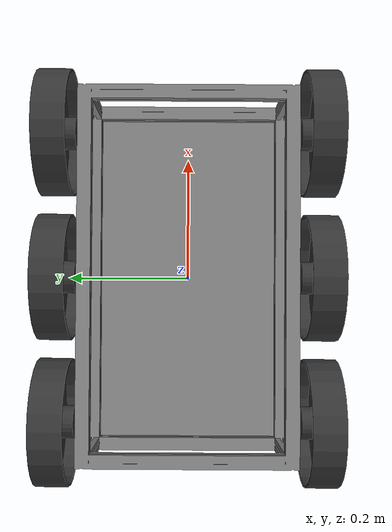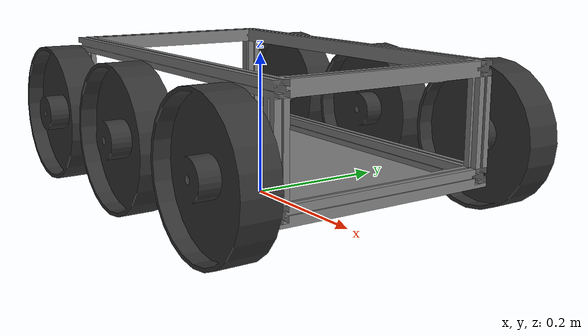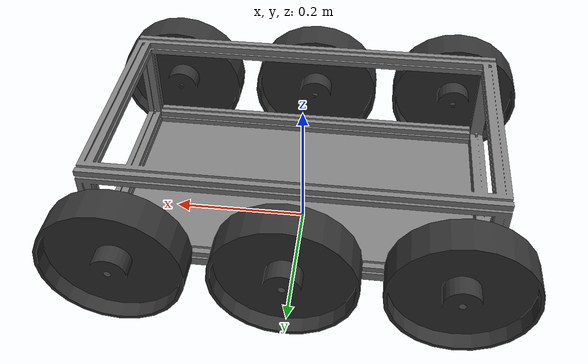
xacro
<?xml version="1.0"?>
<robot
  xmlns:controller="http://playerstage.sourceforge.net/gazebo/xmlschema/#controller"
  xmlns:interface="http://playerstage.sourceforge.net/gazebo/xmlschema/#interface"
  xmlns:xacro="http://ros.org/wiki/xacro"
  name="volksbot_base">

  <xacro:property name="M_PI" value="3.1415926535897931" />

  <xacro:property name="wheel_width" value="0.06" />
  <!-- This is the wheel radius for the robot height, the one for the odometry is in volksbot_node.cpp  -->
  <xacro:property name="wheel_radius" value="0.103" />
  <xacro:property name="axis_length" value="0.41" />
  <xacro:property name="wheel_x_offset" value="0.225" />
  <xacro:property name="wheel_z_offset" value="-0.0275" />
  <xacro:property name="turning_adaptation" value="0.95" />
  <xacro:property name="base_mass" value="10" />
  <xacro:property name="wheel_mass" value="0.25" />

  <xacro:property name="base_link_length" value="0.55"/>
  <xacro:property name="base_link_width" value="0.32"/>
  <xacro:property name="base_link_height" value="0.155"/>

  <link name="base_link">
    <visual>
      <origin xyz="0 0 0" rpy="0 0 0" />
      <geometry>
        <mesh filename="package://volksbot_driver/meshes/base.stl"/>
      </geometry>
      <material name="grey" >
        <color rgba="0.5 0.5 0.5 1" />
      </material>
    </visual>
    <collision>
      <origin xyz="0 0 0" rpy="0 0 0" />
      <geometry>
        <mesh filename="package://volksbot_driver/meshes/base.stl"/>
      </geometry>
    </collision>
    <inertial>
      <mass value="${base_mass}" />
      <origin xyz="0 0 0" />
      <inertia ixx="${0.0833333 * base_mass * (base_link_width*base_link_width + base_link_height*base_link_height)}" ixy="0.0" ixz="0.0"
        iyy="${0.0833333 * base_mass * (base_link_length*base_link_length + base_link_height*base_link_height)}" iyz="0.0"
        izz="${0.0833333 * base_mass * (base_link_length*base_link_length + base_link_width*base_link_width)}" />
    </inertial>
  </link>

  <xacro:macro name="volksbot_wheel" params="name xyz rotate_visual friction">
    <!-- rotate_visual: 0 for right side, 1 for left side -->
    <link name="${name}_wheel_link">
      <visual>
        <origin xyz="0 0 0" rpy="${M_PI/2} 0 ${rotate_visual * M_PI}" />
        <geometry>
          <mesh filename="package://volksbot_driver/meshes/wheel.stl" />
        </geometry>
        <material name="blackish">
          <color rgba="0.2 0.2 0.2 1"/>
        </material>
      </visual>
      <collision>
        <origin xyz="0 0 0" rpy="${M_PI/2} 0 0" />
        <geometry>
          <!-- using STL for collision to fix http://answers.ros.org/question/2368/gazebo-model-wheels-slip-after-upgrade-to-electric -->
          <mesh filename="package://volksbot_driver/meshes/wheel.stl" />
        </geometry>
      </collision>
      <inertial>
        <mass value="${wheel_mass}" />
        <origin xyz="0 0 0" />
        <inertia ixx="${0.0833333 * wheel_mass * (3 * wheel_radius * wheel_radius + wheel_width * wheel_width)}" ixy="0.0" ixz="0.0"
          iyy="${0.0833333 * wheel_mass * (3 * wheel_radius * wheel_radius + wheel_width * wheel_width)}" iyz="0.0"
          izz="${0.5 * wheel_mass * wheel_radius * wheel_radius}" />
      </inertial>
    </link>

    <!-- friction parameters -->
    <gazebo reference="${name}_wheel_link">
      <!-- Turtlebot: -->
      <mu1 value="${friction}"/>
      <mu2 value="${friction}"/>
      <kp value="100000000.0"/>
      <kd value="10000.0"/>
      <material value="Gazebo/FlatBlack" />
    </gazebo>

    <joint name="${name}_wheel_joint" type="continuous">
      <origin xyz="${xyz}" rpy="0 0 0" />
      <parent link="base_link"/>
      <child link="${name}_wheel_link"/>
      <axis xyz="0 1 0"/>
    </joint>
  </xacro:macro>

  <xacro:volksbot_wheel name="left_front" xyz="${wheel_x_offset} ${axis_length/2} ${wheel_z_offset}" rotate_visual="1" friction="1.0" />
  <xacro:volksbot_wheel name="left_middle" xyz="0 ${axis_length/2} ${wheel_z_offset}" rotate_visual="1" friction="100.0" />
  <xacro:volksbot_wheel name="left_rear" xyz="${-wheel_x_offset} ${axis_length/2} ${wheel_z_offset}" rotate_visual="1" friction="1.0" />
  <xacro:volksbot_wheel name="right_front" xyz="${wheel_x_offset} ${-axis_length/2} ${wheel_z_offset}" rotate_visual="0" friction="1.0" />
  <xacro:volksbot_wheel name="right_middle" xyz="0 ${-axis_length/2} ${wheel_z_offset}" rotate_visual="0" friction="100.0" />
  <xacro:volksbot_wheel name="right_rear" xyz="${-wheel_x_offset} ${-axis_length/2} ${wheel_z_offset}" rotate_visual="0" friction="1.0" />

  <!-- base_footprint is a fictitious link(frame) that is on the ground right below base_link origin,
       navigation stack depends on this frame -->
  <link name="base_footprint"/>

  <joint name="base_footprint_joint" type="fixed">
    <origin xyz="0 0 ${wheel_radius -  wheel_z_offset}" rpy="0 0 0" />
    <parent link="base_footprint"/>
    <child link="base_link" />
  </joint>

  <link name="base_top" />

  <joint name="base_top_joint" type="fixed">
    <origin xyz="0 0 ${base_link_height / 2.0}" rpy="0 0 0" />
    <parent link="base_link" />
    <child link="base_top"/>
  </joint>

  <gazebo>
    <plugin name="volksbot_diffdrive" filename="libgazebo_ros_diffdrive_uos.so">
      <alwaysOn>true</alwaysOn>
      <cmd_vel_topic_name>cmd_vel</cmd_vel_topic_name>
      <odom_topic_name>odom</odom_topic_name>
      <joint_states_topic_name>joint_states</joint_states_topic_name>
      <left_front_wheel_joint>left_front_wheel_joint</left_front_wheel_joint>
      <left_middle_wheel_joint>left_middle_wheel_joint</left_middle_wheel_joint>
      <left_rear_wheel_joint>left_rear_wheel_joint</left_rear_wheel_joint>
      <right_front_wheel_joint>right_front_wheel_joint</right_front_wheel_joint>
      <right_middle_wheel_joint>right_middle_wheel_joint</right_middle_wheel_joint>
      <right_rear_wheel_joint>right_rear_wheel_joint</right_rear_wheel_joint>
      <wheel_separation>${axis_length}</wheel_separation>
      <wheel_diameter>${2*wheel_radius}</wheel_diameter>
      <turning_adaptation>${turning_adaptation}</turning_adaptation>
      <torque>4.0</torque>
      <max_velocity>0.9</max_velocity>
      <updateRate>40.0</updateRate>
    </plugin>
  </gazebo>

  <!-- publish ground truth for pose of base_footprint -->
  <gazebo>
    <plugin name="base_footprint_controller" filename="libgazebo_ros_p3d.so">
      <alwaysOn>true</alwaysOn>
      <updateRate>30.0</updateRate>
      <bodyName>base_footprint</bodyName>
      <topicName>base_footprint_pose_ground_truth</topicName>
      <gaussianNoise>0.0</gaussianNoise>
      <frameName>map</frameName>
      <interface:position name="base_footprint_p3d_position_iface" />
    </plugin>
  </gazebo>
</robot>
